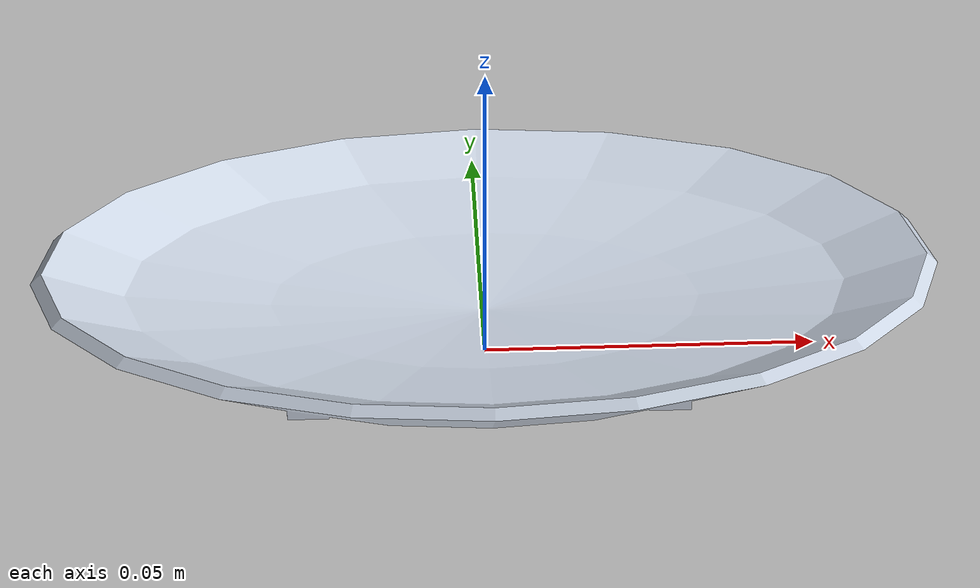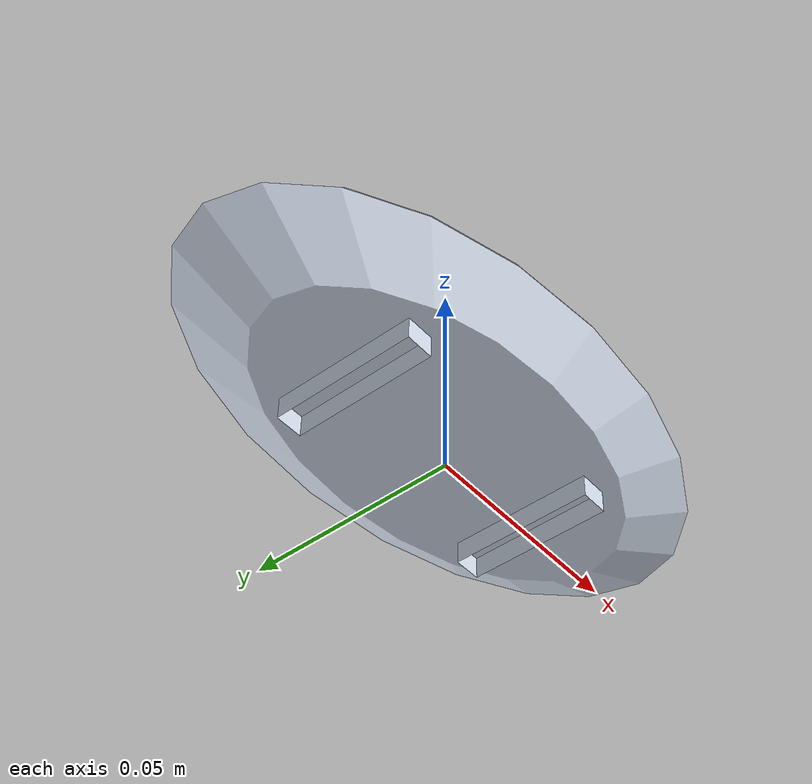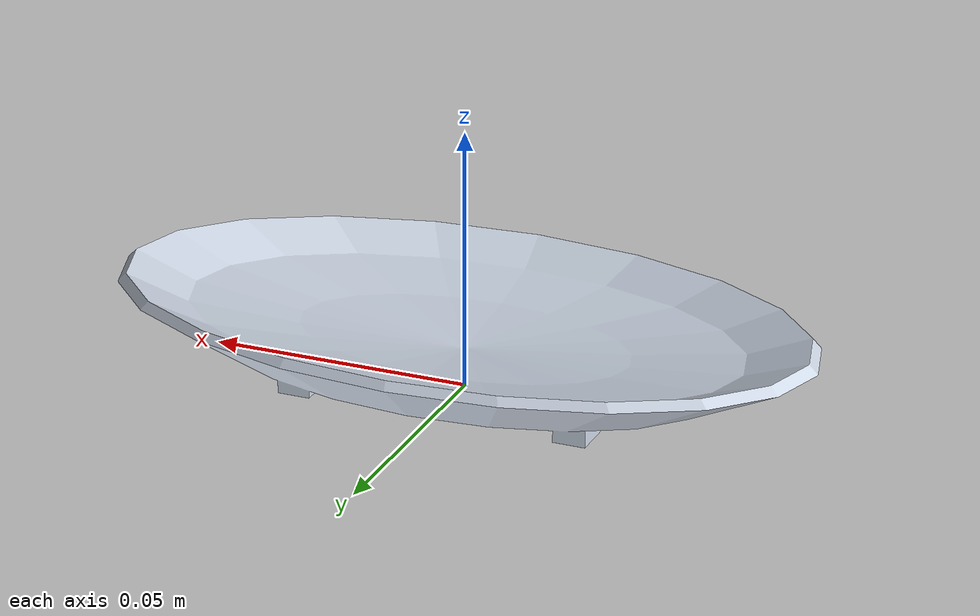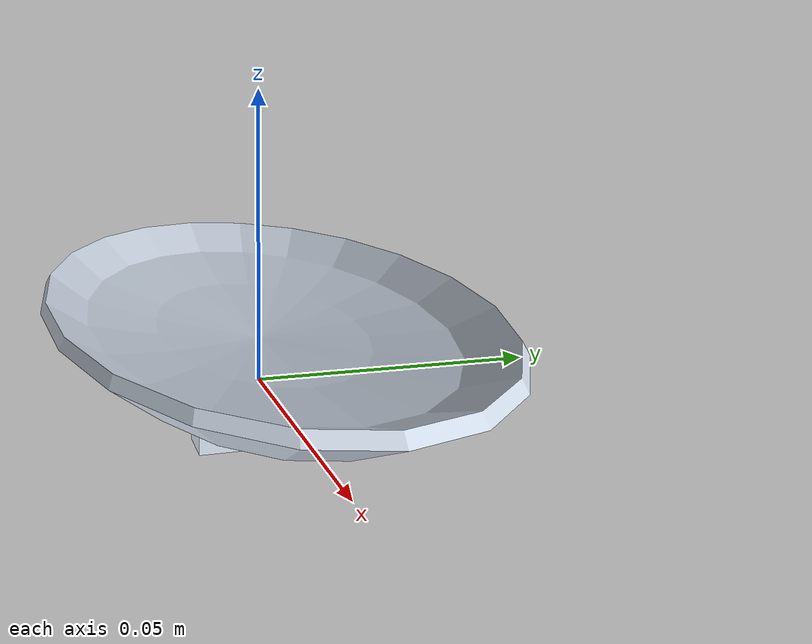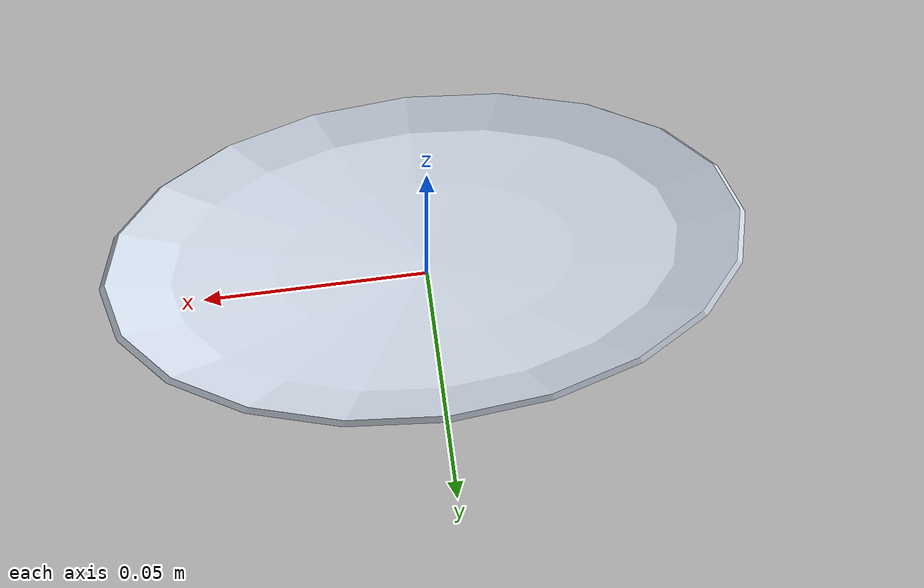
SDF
<?xml version='1.0'?>
<sdf version="1.4">
	<model name="soap_dish">
		<static>1</static>
		<link name="link">
			<visual name="mesh">
				<geometry>
					<mesh>
						<uri>model://meshes/soap_dish.dae</uri>
					</mesh>
				</geometry>
			</visual>
			<collision name="collider">
				<pose>0 0 0.008 0 0 0</pose>
				<geometry>
					<box>
						<size>0.137 0.073 0.016</size>
					</box>
				</geometry>
			</collision>
		</link>
	</model>
</sdf>
